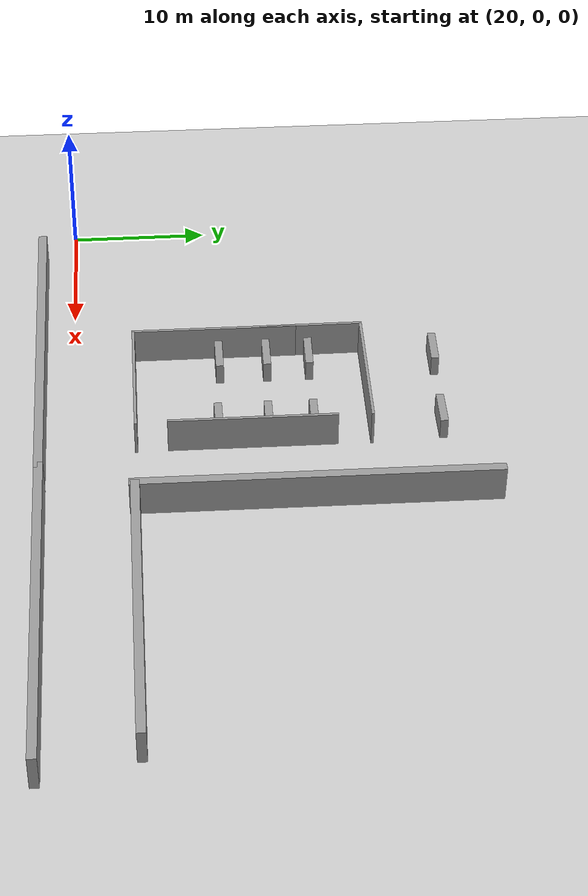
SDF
<sdf version="1.7">
 <world name="default">
  <model name="ground_plane">
   <static>1</static>
   <link name="link">
    <collision name="collision">
     <geometry><plane><normal>0 0 1</normal><size>100 100</size></plane></geometry>
     <surface><friction><ode><mu>100</mu><mu2>50</mu2></ode></friction></surface>
    </collision>
    <visual name="visual">
     <cast_shadows>0</cast_shadows>
     <geometry><plane><normal>0 0 1</normal><size>100 100</size></plane></geometry>
     <material>
      <script><uri>file://media/materials/scripts/gazebo.material</uri><name>Gazebo/Grey</name></script>
     </material>
    </visual>
   </link>
  </model>
  <model name="grey_wall_long_0">
   <link name="link">
    <pose>0 0 1.37589 0 -0 0</pose>
    <inertial>
     <inertia><ixx>0</ixx><ixy>0</ixy><ixz>0</ixz><iyy>0</iyy><iyz>0</iyz><izz>0</izz></inertia>
     <mass>0</mass>
    </inertial>
    <visual name="visual">
     <cast_shadows>0</cast_shadows>
     <geometry><box><size>25.8815 0.642976 2.8</size></box></geometry>
     <material>
      <script>
       <uri>model://grey_wall/materials/scripts</uri>
       <uri>model://grey_wall/materials/textures</uri>
       <name>vrc/grey_wall</name>
      </script>
      <shader type="pixel"><normal_map>__default__</normal_map></shader>
      <ambient>1 1 1 1</ambient>
      <diffuse>1 1 1 1</diffuse>
      <specular>0 0 0 1</specular>
      <emissive>0 0 0 1</emissive>
     </material>
    </visual>
    <collision name="collision">
     <geometry><box><size>25.8815 0.642976 2.8</size></box></geometry>
     <surface>
      <friction>
       <ode><mu>1</mu><mu2>1</mu2><fdir1>0 0 0</fdir1><slip1>0</slip1><slip2>0</slip2></ode>
       <torsional>
        <coefficient>1</coefficient>
        <patch_radius>0</patch_radius>
        <surface_radius>0</surface_radius>
        <use_patch_radius>1</use_patch_radius>
        <ode><slip>0</slip></ode>
       </torsional>
      </friction>
      <bounce><restitution_coefficient>0</restitution_coefficient><threshold>1e+06</threshold></bounce>
      <contact>
       <collide_without_contact>0</collide_without_contact>
       <collide_without_contact_bitmask>1</collide_without_contact_bitmask>
       <collide_bitmask>1</collide_bitmask>
       <ode>
        <soft_cfm>0</soft_cfm>
        <soft_erp>0.2</soft_erp>
        <kp>1e+13</kp>
        <kd>1</kd>
        <max_vel>0.01</max_vel>
        <min_depth>0</min_depth>
       </ode>
       <bullet>
        <split_impulse>1</split_impulse>
        <split_impulse_penetration_threshold>-0.01</split_impulse_penetration_threshold>
        <soft_cfm>0</soft_cfm>
        <soft_erp>0.2</soft_erp>
        <kp>1e+13</kp>
        <kd>1</kd>
       </bullet>
      </contact>
     </surface>
    </collision>
   </link>
   <static>1</static>
   <pose>35.9605 -2.39418 0 0 -0 0</pose>
  </model>
  <model name="grey_wall_long_1">
   <link name="link">
    <pose>0 0 1.37589 0 -0 0</pose>
    <inertial>
     <inertia><ixx>0</ixx><ixy>0</ixy><ixz>0</ixz><iyy>0</iyy><iyz>0</iyz><izz>0</izz></inertia>
     <mass>0</mass>
    </inertial>
    <visual name="visual">
     <cast_shadows>0</cast_shadows>
     <geometry><box><size>25.8815 0.642976 2.8</size></box></geometry>
     <material>
      <script>
       <uri>model://grey_wall/materials/scripts</uri>
       <uri>model://grey_wall/materials/textures</uri>
       <name>vrc/grey_wall</name>
      </script>
      <shader type="pixel"><normal_map>__default__</normal_map></shader>
      <ambient>1 1 1 1</ambient>
      <diffuse>1 1 1 1</diffuse>
      <specular>0 0 0 1</specular>
      <emissive>0 0 0 1</emissive>
     </material>
    </visual>
    <collision name="collision">
     <geometry><box><size>25.8815 0.642976 2.8</size></box></geometry>
     <surface>
      <friction>
       <ode><mu>1</mu><mu2>1</mu2><fdir1>0 0 0</fdir1><slip1>0</slip1><slip2>0</slip2></ode>
       <torsional>
        <coefficient>1</coefficient>
        <patch_radius>0</patch_radius>
        <surface_radius>0</surface_radius>
        <use_patch_radius>1</use_patch_radius>
        <ode><slip>0</slip></ode>
       </torsional>
      </friction>
      <bounce><restitution_coefficient>0</restitution_coefficient><threshold>1e+06</threshold></bounce>
      <contact>
       <collide_without_contact>0</collide_without_contact>
       <collide_without_contact_bitmask>1</collide_without_contact_bitmask>
       <collide_bitmask>1</collide_bitmask>
       <ode>
        <soft_cfm>0</soft_cfm>
        <soft_erp>0.2</soft_erp>
        <kp>1e+13</kp>
        <kd>1</kd>
        <max_vel>0.01</max_vel>
        <min_depth>0</min_depth>
       </ode>
       <bullet>
        <split_impulse>1</split_impulse>
        <split_impulse_penetration_threshold>-0.01</split_impulse_penetration_threshold>
        <soft_cfm>0</soft_cfm>
        <soft_erp>0.2</soft_erp>
        <kp>1e+13</kp>
        <kd>1</kd>
       </bullet>
      </contact>
     </surface>
    </collision>
   </link>
   <static>1</static>
   <pose>61.3257 -2.37865 0 0 -0 0</pose>
  </model>
  <model name="jiaoshi_clone_clone_clone_2">
   <model name="grey_wall">
    <static>1</static>
    <link name="link">
     <pose>0 0 1.4 0 -0 0</pose>
     <collision name="collision"><geometry><box><size>7.5 0.2 2.8</size></box></geometry></collision>
     <visual name="visual">
      <cast_shadows>0</cast_shadows>
      <geometry><box><size>7.5 0.2 2.8</size></box></geometry>
      <material>
       <script>
        <uri>model://grey_wall/materials/scripts</uri>
        <uri>model://grey_wall/materials/textures</uri>
        <name>vrc/grey_wall</name>
       </script>
      </material>
     </visual>
    </link>
    <pose>-3.38172 4.2623 0 0 0 -1.56473</pose>
   </model>
   <model name="grey_wall_10m">
    <link name="link">
     <pose>1.25079 -0.023082 1.4 0 -0 0</pose>
     <inertial>
      <inertia><ixx>0</ixx><ixy>0</ixy><ixz>0</ixz><iyy>0</iyy><iyz>0</iyz><izz>0</izz></inertia>
      <mass>0</mass>
     </inertial>
     <visual name="visual">
      <cast_shadows>0</cast_shadows>
      <geometry><box><size>10.0157 0.2 2.8</size></box></geometry>
      <material>
       <script>
        <uri>model://grey_wall/materials/scripts</uri>
        <uri>model://grey_wall/materials/textures</uri>
        <name>vrc/grey_wall</name>
       </script>
       <shader type="pixel"/>
       <ambient>1 1 1 1</ambient>
       <diffuse>1 1 1 1</diffuse>
       <specular>0 0 0 1</specular>
       <emissive>0 0 0 1</emissive>
      </material>
     </visual>
     <collision name="collision">
      <geometry><box><size>10.0157 0.2 2.8</size></box></geometry>
      <surface>
       <friction>
        <ode><mu>1</mu><mu2>1</mu2><fdir1>0 0 0</fdir1><slip1>0</slip1><slip2>0</slip2></ode>
        <torsional>
         <coefficient>1</coefficient>
         <patch_radius>0</patch_radius>
         <surface_radius>0</surface_radius>
         <use_patch_radius>1</use_patch_radius>
         <ode><slip>0</slip></ode>
        </torsional>
       </friction>
       <bounce><restitution_coefficient>0</restitution_coefficient><threshold>1e+06</threshold></bounce>
       <contact>
        <collide_without_contact>0</collide_without_contact>
        <collide_without_contact_bitmask>1</collide_without_contact_bitmask>
        <collide_bitmask>1</collide_bitmask>
        <ode>
         <soft_cfm>0</soft_cfm>
         <soft_erp>0.2</soft_erp>
         <kp>1e+13</kp>
         <kd>1</kd>
         <max_vel>0.01</max_vel>
         <min_depth>0</min_depth>
        </ode>
        <bullet>
         <split_impulse>1</split_impulse>
         <split_impulse_penetration_threshold>-0.01</split_impulse_penetration_threshold>
         <soft_cfm>0</soft_cfm>
         <soft_erp>0.2</soft_erp>
         <kp>1e+13</kp>
         <kd>1</kd>
        </bullet>
       </contact>
      </surface>
     </collision>
    </link>
    <static>1</static>
    <pose>0.433183 -8.77625 0 0 -0 0</pose>
   </model>
   <model name="grey_wall_10m_0">
    <link name="link">
     <pose>1.25079 -0.023082 1.4 0 -0 0</pose>
     <inertial>
      <inertia><ixx>0</ixx><ixy>0</ixy><ixz>0</ixz><iyy>0</iyy><iyz>0</iyz><izz>0</izz></inertia>
      <mass>0</mass>
     </inertial>
     <visual name="visual">
      <cast_shadows>0</cast_shadows>
      <geometry><box><size>10.0157 0.2 2.8</size></box></geometry>
      <material>
       <script>
        <uri>model://grey_wall/materials/scripts</uri>
        <uri>model://grey_wall/materials/textures</uri>
        <name>vrc/grey_wall</name>
       </script>
       <shader type="pixel"/>
       <ambient>1 1 1 1</ambient>
       <diffuse>1 1 1 1</diffuse>
       <specular>0 0 0 1</specular>
       <emissive>0 0 0 1</emissive>
      </material>
     </visual>
     <collision name="collision">
      <geometry><box><size>10.0157 0.2 2.8</size></box></geometry>
      <surface>
       <friction>
        <ode><mu>1</mu><mu2>1</mu2><fdir1>0 0 0</fdir1><slip1>0</slip1><slip2>0</slip2></ode>
        <torsional>
         <coefficient>1</coefficient>
         <patch_radius>0</patch_radius>
         <surface_radius>0</surface_radius>
         <use_patch_radius>1</use_patch_radius>
         <ode><slip>0</slip></ode>
        </torsional>
       </friction>
       <bounce><restitution_coefficient>0</restitution_coefficient><threshold>1e+06</threshold></bounce>
       <contact>
        <collide_without_contact>0</collide_without_contact>
        <collide_without_contact_bitmask>1</collide_without_contact_bitmask>
        <collide_bitmask>1</collide_bitmask>
        <ode>
         <soft_cfm>0</soft_cfm>
         <soft_erp>0.2</soft_erp>
         <kp>1e+13</kp>
         <kd>1</kd>
         <max_vel>0.01</max_vel>
         <min_depth>0</min_depth>
        </ode>
        <bullet>
         <split_impulse>1</split_impulse>
         <split_impulse_penetration_threshold>-0.01</split_impulse_penetration_threshold>
         <soft_cfm>0</soft_cfm>
         <soft_erp>0.2</soft_erp>
         <kp>1e+13</kp>
         <kd>1</kd>
        </bullet>
       </contact>
      </surface>
     </collision>
    </link>
    <static>1</static>
    <pose>0.377364 7.92573 0 0 -0 0</pose>
   </model>
   <model name="grey_wall_12m_vertial">
    <link name="link">
     <pose>0.289112 -0.003891 1.4 0 0 -1.5701</pose>
     <inertial>
      <inertia><ixx>0</ixx><ixy>0</ixy><ixz>0</ixz><iyy>0</iyy><iyz>0</iyz><izz>0</izz></inertia>
      <mass>0</mass>
     </inertial>
     <visual name="visual">
      <cast_shadows>0</cast_shadows>
      <geometry><box><size>12.0527 0.2 2.8</size></box></geometry>
      <material>
       <script>
        <uri>model://grey_wall/materials/scripts</uri>
        <uri>model://grey_wall/materials/textures</uri>
        <name>vrc/grey_wall</name>
       </script>
       <shader type="pixel"/>
       <ambient>1 1 1 1</ambient>
       <diffuse>1 1 1 1</diffuse>
       <specular>0 0 0 1</specular>
       <emissive>0 0 0 1</emissive>
      </material>
     </visual>
     <collision name="collision">
      <geometry><box><size>12.0527 0.2 2.8</size></box></geometry>
      <surface>
       <friction>
        <ode><mu>1</mu><mu2>1</mu2><fdir1>0 0 0</fdir1><slip1>0</slip1><slip2>0</slip2></ode>
        <torsional>
         <coefficient>1</coefficient>
         <patch_radius>0</patch_radius>
         <surface_radius>0</surface_radius>
         <use_patch_radius>1</use_patch_radius>
         <ode><slip>0</slip></ode>
        </torsional>
       </friction>
       <bounce><restitution_coefficient>0</restitution_coefficient><threshold>1e+06</threshold></bounce>
       <contact>
        <collide_without_contact>0</collide_without_contact>
        <collide_without_contact_bitmask>1</collide_without_contact_bitmask>
        <collide_bitmask>1</collide_bitmask>
        <ode>
         <soft_cfm>0</soft_cfm>
         <soft_erp>0.2</soft_erp>
         <kp>1e+13</kp>
         <kd>1</kd>
         <max_vel>0.01</max_vel>
         <min_depth>0</min_depth>
        </ode>
        <bullet>
         <split_impulse>1</split_impulse>
         <split_impulse_penetration_threshold>-0.01</split_impulse_penetration_threshold>
         <soft_cfm>0</soft_cfm>
         <soft_erp>0.2</soft_erp>
         <kp>1e+13</kp>
         <kd>1</kd>
        </bullet>
       </contact>
      </surface>
     </collision>
    </link>
    <static>1</static>
    <pose>-3.63668 -2.87268 0 0 -0 0</pose>
   </model>
   <model name="grey_wall_12m_vertial_0">
    <link name="link">
     <pose>0.289112 -0.003891 1.4 0 0 -1.5701</pose>
     <inertial>
      <inertia><ixx>0</ixx><ixy>0</ixy><ixz>0</ixz><iyy>0</iyy><iyz>0</iyz><izz>0</izz></inertia>
      <mass>0</mass>
     </inertial>
     <visual name="visual">
      <cast_shadows>0</cast_shadows>
      <geometry><box><size>12.0527 0.2 2.8</size></box></geometry>
      <material>
       <script>
        <uri>model://grey_wall/materials/scripts</uri>
        <uri>model://grey_wall/materials/textures</uri>
        <name>vrc/grey_wall</name>
       </script>
       <shader type="pixel"/>
       <ambient>1 1 1 1</ambient>
       <diffuse>1 1 1 1</diffuse>
       <specular>0 0 0 1</specular>
       <emissive>0 0 0 1</emissive>
      </material>
     </visual>
     <collision name="collision">
      <geometry><box><size>12.0527 0.2 2.8</size></box></geometry>
      <surface>
       <friction>
        <ode><mu>1</mu><mu2>1</mu2><fdir1>0 0 0</fdir1><slip1>0</slip1><slip2>0</slip2></ode>
        <torsional>
         <coefficient>1</coefficient>
         <patch_radius>0</patch_radius>
         <surface_radius>0</surface_radius>
         <use_patch_radius>1</use_patch_radius>
         <ode><slip>0</slip></ode>
        </torsional>
       </friction>
       <bounce><restitution_coefficient>0</restitution_coefficient><threshold>1e+06</threshold></bounce>
       <contact>
        <collide_without_contact>0</collide_without_contact>
        <collide_without_contact_bitmask>1</collide_without_contact_bitmask>
        <collide_bitmask>1</collide_bitmask>
        <ode>
         <soft_cfm>0</soft_cfm>
         <soft_erp>0.2</soft_erp>
         <kp>1e+13</kp>
         <kd>1</kd>
         <max_vel>0.01</max_vel>
         <min_depth>0</min_depth>
        </ode>
        <bullet>
         <split_impulse>1</split_impulse>
         <split_impulse_penetration_threshold>-0.01</split_impulse_penetration_threshold>
         <soft_cfm>0</soft_cfm>
         <soft_erp>0.2</soft_erp>
         <kp>1e+13</kp>
         <kd>1</kd>
        </bullet>
       </contact>
      </surface>
     </collision>
    </link>
    <static>1</static>
    <pose>6.20786 -0.539083 0 0 -0 0</pose>
   </model>
   <static>0</static>
   <pose>38.2185 13.1543 0 0 -0 0</pose>
  </model>
  <model name="grew_wall_long_vertial_1_clone_clone_2">
   <model name="grey_wall_long">
    <link name="link">
     <pose>0 0 1.37589 0 -0 0</pose>
     <inertial>
      <inertia><ixx>0</ixx><ixy>0</ixy><ixz>0</ixz><iyy>0</iyy><iyz>0</iyz><izz>0</izz></inertia>
      <mass>0</mass>
     </inertial>
     <visual name="visual">
      <cast_shadows>0</cast_shadows>
      <geometry><box><size>25.8815 0.642976 2.8</size></box></geometry>
      <material>
       <script>
        <uri>model://grey_wall/materials/scripts</uri>
        <uri>model://grey_wall/materials/textures</uri>
        <name>vrc/grey_wall</name>
       </script>
       <shader type="pixel"><normal_map>__default__</normal_map></shader>
       <ambient>1 1 1 1</ambient>
       <diffuse>1 1 1 1</diffuse>
       <specular>0 0 0 1</specular>
       <emissive>0 0 0 1</emissive>
      </material>
     </visual>
     <collision name="collision">
      <geometry><box><size>25.8815 0.642976 2.8</size></box></geometry>
      <surface>
       <friction>
        <ode><mu>1</mu><mu2>1</mu2><fdir1>0 0 0</fdir1><slip1>0</slip1><slip2>0</slip2></ode>
        <torsional>
         <coefficient>1</coefficient>
         <patch_radius>0</patch_radius>
         <surface_radius>0</surface_radius>
         <use_patch_radius>1</use_patch_radius>
         <ode><slip>0</slip></ode>
        </torsional>
       </friction>
       <bounce><restitution_coefficient>0</restitution_coefficient><threshold>1e+06</threshold></bounce>
       <contact>
        <collide_without_contact>0</collide_without_contact>
        <collide_without_contact_bitmask>1</collide_without_contact_bitmask>
        <collide_bitmask>1</collide_bitmask>
        <ode>
         <soft_cfm>0</soft_cfm>
         <soft_erp>0.2</soft_erp>
         <kp>1e+13</kp>
         <kd>1</kd>
         <max_vel>0.01</max_vel>
         <min_depth>0</min_depth>
        </ode>
        <bullet>
         <split_impulse>1</split_impulse>
         <split_impulse_penetration_threshold>-0.01</split_impulse_penetration_threshold>
         <soft_cfm>0</soft_cfm>
         <soft_erp>0.2</soft_erp>
         <kp>1e+13</kp>
         <kd>1</kd>
        </bullet>
       </contact>
      </surface>
     </collision>
    </link>
    <static>1</static>
    <pose>1e-06 -0 0 0 -0 1.57003</pose>
   </model>
   <static>0</static>
   <pose>50.6699 16.7376 0 0 -0 0</pose>
  </model>
  <model name="grey_wall_long_term_clone_1">
   <link name="link">
    <pose>-1.74587 -0.378849 1.37589 0 -0 0</pose>
    <inertial>
     <inertia><ixx>0</ixx><ixy>0</ixy><ixz>0</ixz><iyy>0</iyy><iyz>0</iyz><izz>0</izz></inertia>
     <mass>0</mass>
    </inertial>
    <visual name="visual">
     <cast_shadows>0</cast_shadows>
     <geometry><box><size>22.1596 0.642976 2.8</size></box></geometry>
     <material>
      <script>
       <uri>model://grey_wall/materials/scripts</uri>
       <uri>model://grey_wall/materials/textures</uri>
       <name>vrc/grey_wall</name>
      </script>
      <shader type="pixel"><normal_map>__default__</normal_map></shader>
      <ambient>1 1 1 1</ambient>
      <diffuse>1 1 1 1</diffuse>
      <specular>0 0 0 1</specular>
      <emissive>0 0 0 1</emissive>
     </material>
    </visual>
    <collision name="collision">
     <geometry><box><size>22.1596 0.642976 2.8</size></box></geometry>
     <surface>
      <friction>
       <ode><mu>1</mu><mu2>1</mu2><fdir1>0 0 0</fdir1><slip1>0</slip1><slip2>0</slip2></ode>
       <torsional>
        <coefficient>1</coefficient>
        <patch_radius>0</patch_radius>
        <surface_radius>0</surface_radius>
        <use_patch_radius>1</use_patch_radius>
        <ode><slip>0</slip></ode>
       </torsional>
      </friction>
      <bounce><restitution_coefficient>0</restitution_coefficient><threshold>1e+06</threshold></bounce>
      <contact>
       <collide_without_contact>0</collide_without_contact>
       <collide_without_contact_bitmask>1</collide_without_contact_bitmask>
       <collide_bitmask>1</collide_bitmask>
       <ode>
        <soft_cfm>0</soft_cfm>
        <soft_erp>0.2</soft_erp>
        <kp>1e+13</kp>
        <kd>1</kd>
        <max_vel>0.01</max_vel>
        <min_depth>0</min_depth>
       </ode>
       <bullet>
        <split_impulse>1</split_impulse>
        <split_impulse_penetration_threshold>-0.01</split_impulse_penetration_threshold>
        <soft_cfm>0</soft_cfm>
        <soft_erp>0.2</soft_erp>
        <kp>1e+13</kp>
        <kd>1</kd>
       </bullet>
      </contact>
     </surface>
    </collision>
   </link>
   <static>1</static>
   <pose>63.3055 4.59056 0 0 -0 0</pose>
  </model>
  <model name="unit_box_clone_26">
   <pose>36.3962 26.3332 0.834396 -0 3.2e-05 -0.007133</pose>
   <link name="link">
    <inertial>
     <mass>1</mass>
     <inertia>
      <ixx>0.166667</ixx>
      <ixy>0</ixy>
      <ixz>0</ixz>
      <iyy>0.166667</iyy>
      <iyz>0</iyz>
      <izz>0.166667</izz>
     </inertia>
    </inertial>
    <collision name="collision"><geometry><box><size>2.81196 0.562598 1.66888</size></box></geometry></collision>
    <visual name="visual">
     <geometry><box><size>2.81196 0.562598 1.66888</size></box></geometry>
     <material>
      <script><name>Gazebo/Grey</name><uri>file://media/materials/scripts/gazebo.material</uri></script>
     </material>
    </visual>
   </link>
  </model>
  <model name="unit_box_clone_27">
   <pose>43.2042 26.1763 0.834396 -0 -3.2e-05 0.009568</pose>
   <link name="link">
    <inertial>
     <mass>1</mass>
     <inertia>
      <ixx>0.166667</ixx>
      <ixy>0</ixy>
      <ixz>0</ixz>
      <iyy>0.166667</iyy>
      <iyz>0</iyz>
      <izz>0.166667</izz>
     </inertia>
    </inertial>
    <collision name="collision"><geometry><box><size>2.81196 0.562598 1.66888</size></box></geometry></collision>
    <visual name="visual">
     <geometry><box><size>2.81196 0.562598 1.66888</size></box></geometry>
     <material>
      <script><name>Gazebo/Grey</name><uri>file://media/materials/scripts/gazebo.material</uri></script>
     </material>
    </visual>
   </link>
  </model>
  <model name="unit_box_clone_28">
   <pose>36.3817 17.1342 0.834396 -0 -3.2e-05 -0.01333</pose>
   <link name="link">
    <inertial>
     <mass>1</mass>
     <inertia>
      <ixx>0.166667</ixx>
      <ixy>0</ixy>
      <ixz>0</ixz>
      <iyy>0.166667</iyy>
      <iyz>0</iyz>
      <izz>0.166667</izz>
     </inertia>
    </inertial>
    <collision name="collision"><geometry><box><size>2.81196 0.562598 1.66888</size></box></geometry></collision>
    <visual name="visual">
     <geometry><box><size>2.81196 0.562598 1.66888</size></box></geometry>
     <material>
      <script><name>Gazebo/Grey</name><uri>file://media/materials/scripts/gazebo.material</uri></script>
     </material>
    </visual>
   </link>
  </model>
  <model name="unit_box_clone_29">
   <pose>43.1927 17.0437 0.834396 0 -3.2e-05 -0.010925</pose>
   <link name="link">
    <inertial>
     <mass>1</mass>
     <inertia>
      <ixx>0.166667</ixx>
      <ixy>0</ixy>
      <ixz>0</ixz>
      <iyy>0.166667</iyy>
      <iyz>0</iyz>
      <izz>0.166667</izz>
     </inertia>
    </inertial>
    <collision name="collision"><geometry><box><size>2.81196 0.562598 1.66888</size></box></geometry></collision>
    <visual name="visual">
     <geometry><box><size>2.81196 0.562598 1.66888</size></box></geometry>
     <material>
      <script><name>Gazebo/Grey</name><uri>file://media/materials/scripts/gazebo.material</uri></script>
     </material>
    </visual>
   </link>
  </model>
  <model name="unit_box_clone_30">
   <pose>36.3864 14.0391 0.834396 0 3.2e-05 -0.005534</pose>
   <link name="link">
    <inertial>
     <mass>1</mass>
     <inertia>
      <ixx>0.166667</ixx>
      <ixy>0</ixy>
      <ixz>0</ixz>
      <iyy>0.166667</iyy>
      <iyz>0</iyz>
      <izz>0.166667</izz>
     </inertia>
    </inertial>
    <collision name="collision"><geometry><box><size>2.81196 0.562598 1.66888</size></box></geometry></collision>
    <visual name="visual">
     <geometry><box><size>2.81196 0.562598 1.66888</size></box></geometry>
     <material>
      <script><name>Gazebo/Grey</name><uri>file://media/materials/scripts/gazebo.material</uri></script>
     </material>
    </visual>
   </link>
  </model>
  <model name="unit_box_clone_31">
   <pose>43.194 13.8123 0.834396 0 -3.2e-05 -0.008403</pose>
   <link name="link">
    <inertial>
     <mass>1</mass>
     <inertia>
      <ixx>0.166667</ixx>
      <ixy>0</ixy>
      <ixz>0</ixz>
      <iyy>0.166667</iyy>
      <iyz>0</iyz>
      <izz>0.166667</izz>
     </inertia>
    </inertial>
    <collision name="collision"><geometry><box><size>2.81196 0.562598 1.66888</size></box></geometry></collision>
    <visual name="visual">
     <geometry><box><size>2.81196 0.562598 1.66888</size></box></geometry>
     <material>
      <script><name>Gazebo/Grey</name><uri>file://media/materials/scripts/gazebo.material</uri></script>
     </material>
    </visual>
   </link>
  </model>
  <model name="unit_box_clone_32">
   <pose>36.3872 10.5762 0.834396 0 3.2e-05 0.000893</pose>
   <link name="link">
    <inertial>
     <mass>1</mass>
     <inertia>
      <ixx>0.166667</ixx>
      <ixy>0</ixy>
      <ixz>0</ixz>
      <iyy>0.166667</iyy>
      <iyz>0</iyz>
      <izz>0.166667</izz>
     </inertia>
    </inertial>
    <collision name="collision"><geometry><box><size>2.81196 0.562598 1.66888</size></box></geometry></collision>
    <visual name="visual">
     <geometry><box><size>2.81196 0.562598 1.66888</size></box></geometry>
     <material>
      <script><name>Gazebo/Grey</name><uri>file://media/materials/scripts/gazebo.material</uri></script>
     </material>
    </visual>
   </link>
  </model>
  <model name="unit_box_clone_33">
   <pose>43.1958 10.2517 0.834396 -0 -3.2e-05 0.006916</pose>
   <link name="link">
    <inertial>
     <mass>1</mass>
     <inertia>
      <ixx>0.166667</ixx>
      <ixy>0</ixy>
      <ixz>0</ixz>
      <iyy>0.166667</iyy>
      <iyz>0</iyz>
      <izz>0.166667</izz>
     </inertia>
    </inertial>
    <collision name="collision"><geometry><box><size>2.81196 0.562598 1.66888</size></box></geometry></collision>
    <visual name="visual">
     <geometry><box><size>2.81196 0.562598 1.66888</size></box></geometry>
     <material>
      <script><name>Gazebo/Grey</name><uri>file://media/materials/scripts/gazebo.material</uri></script>
     </material>
    </visual>
   </link>
  </model>
 </world>
</sdf>
